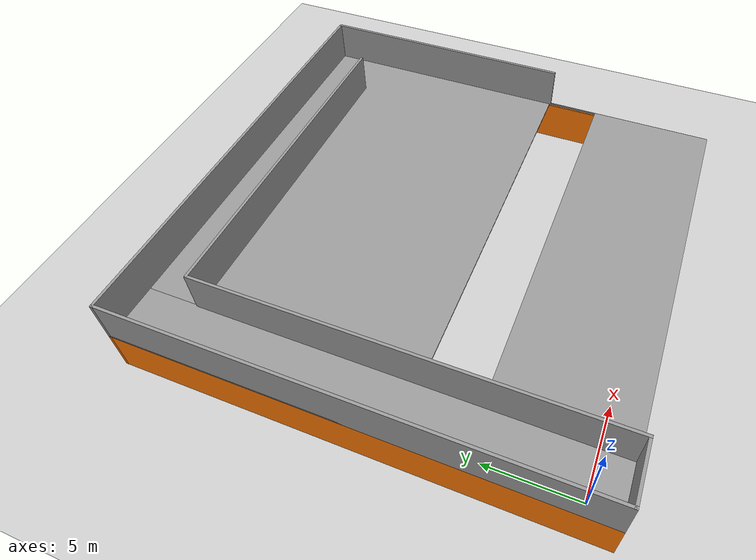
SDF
<sdf version="1.7">
 <world name="default">
  <light name="sun" type="directional">
   <pose>0 0 10 0 -0 0</pose>
   <diffuse>0.8 0.8 0.8 1</diffuse>
   <specular>0.2 0.2 0.2 1</specular>
   <attenuation>
    <range>1000</range>
    <constant>0.9</constant>
    <linear>0.01</linear>
    <quadratic>0.001</quadratic>
   </attenuation>
   <direction>-0.5 0.1 -0.9</direction>
   <spot><inner_angle>0</inner_angle><outer_angle>0</outer_angle><falloff>0</falloff></spot>
  </light>
  <model name="ground_plane">
   <static>1</static>
   <link name="link">
    <collision name="collision">
     <geometry><plane><normal>0 0 1</normal><size>100 100</size></plane></geometry>
     <surface>
      <contact><collide_bitmask>65535</collide_bitmask></contact>
      <friction><ode><mu>100</mu><mu2>50</mu2></ode></friction>
     </surface>
    </collision>
    <visual name="visual">
     <cast_shadows>0</cast_shadows>
     <geometry><plane><normal>0 0 1</normal><size>100 100</size></plane></geometry>
     <material>
      <script><uri>file://media/materials/scripts/gazebo.material</uri><name>Gazebo/Grey</name></script>
     </material>
    </visual>
   </link>
  </model>
  <gravity>0 0 -9.8</gravity>
  <magnetic_field>6e-06 2.3e-05 -4.2e-05</magnetic_field>
  <atmosphere type="adiabatic"/>
  <physics type="ode">
   <max_step_size>0.001</max_step_size>
   <real_time_factor>1</real_time_factor>
   <real_time_update_rate>1000</real_time_update_rate>
  </physics>
  <scene><ambient>0.4 0.4 0.4 1</ambient><background>0.7 0.7 0.7 1</background><shadows>1</shadows></scene>
  <spherical_coordinates>
   <surface_model>EARTH_WGS84</surface_model>
   <latitude_deg>0</latitude_deg>
   <longitude_deg>0</longitude_deg>
   <elevation>0</elevation>
   <heading_deg>0</heading_deg>
  </spherical_coordinates>
  <model name="smart_house_2">
   <link name="Floor_3">
    <pose>0 0 2.5 0 -0 0</pose>
    <visual name="Floor_3_Visual_0">
     <pose>-11.0375 0 0.05 0 -0 0</pose>
     <geometry><box><size>3.075 25.15 0.1</size></box></geometry>
     <material>
      <script><uri>file://media/materials/scripts/gazebo.material</uri><name>Gazebo/Grey</name></script>
      <ambient>1 1 1 1</ambient>
      <shader type="pixel"/>
     </material>
     <meta><layer>1</layer></meta>
    </visual>
    <visual name="Floor_3_Visual_1">
     <pose>1.5375 -9.0375 0.05 0 -0 0</pose>
     <geometry><box><size>22.075 7.075 0.1</size></box></geometry>
     <material>
      <script><uri>file://media/materials/scripts/gazebo.material</uri><name>Gazebo/Grey</name></script>
      <ambient>1 1 1 1</ambient>
      <shader type="pixel"/>
     </material>
     <meta><layer>1</layer></meta>
    </visual>
    <visual name="Floor_3_Visual_2">
     <pose>12.5375 3.5375 0.05 0 -0 0</pose>
     <geometry><box><size>0.075 18.075 0.1</size></box></geometry>
     <material>
      <script><uri>file://media/materials/scripts/gazebo.material</uri><name>Gazebo/Grey</name></script>
      <ambient>1 1 1 1</ambient>
      <shader type="pixel"/>
     </material>
     <meta><layer>1</layer></meta>
    </visual>
    <visual name="Floor_3_Visual_3">
     <pose>1.5 5.0375 0.05 0 -0 0</pose>
     <geometry><box><size>22 15.075 0.1</size></box></geometry>
     <material>
      <script><uri>file://media/materials/scripts/gazebo.material</uri><name>Gazebo/Grey</name></script>
      <ambient>1 1 1 1</ambient>
      <shader type="pixel"/>
     </material>
     <meta><layer>1</layer></meta>
    </visual>
    <collision name="Floor_3_Collision_0">
     <pose>-11.0375 0 0.05 0 -0 0</pose>
     <geometry><box><size>3.075 25.15 0.1</size></box></geometry>
     <surface>
      <friction>
       <ode><mu>1</mu><mu2>1</mu2><fdir1>0 0 0</fdir1><slip1>0</slip1><slip2>0</slip2></ode>
       <torsional>
        <coefficient>1</coefficient>
        <patch_radius>0</patch_radius>
        <surface_radius>0</surface_radius>
        <use_patch_radius>1</use_patch_radius>
        <ode><slip>0</slip></ode>
       </torsional>
      </friction>
      <bounce><restitution_coefficient>0</restitution_coefficient><threshold>1e+06</threshold></bounce>
      <contact>
       <collide_without_contact>0</collide_without_contact>
       <collide_without_contact_bitmask>1</collide_without_contact_bitmask>
       <collide_bitmask>1</collide_bitmask>
       <ode>
        <soft_cfm>0</soft_cfm>
        <soft_erp>0.2</soft_erp>
        <kp>1e+13</kp>
        <kd>1</kd>
        <max_vel>0.01</max_vel>
        <min_depth>0</min_depth>
       </ode>
       <bullet>
        <split_impulse>1</split_impulse>
        <split_impulse_penetration_threshold>-0.01</split_impulse_penetration_threshold>
        <soft_cfm>0</soft_cfm>
        <soft_erp>0.2</soft_erp>
        <kp>1e+13</kp>
        <kd>1</kd>
       </bullet>
      </contact>
     </surface>
    </collision>
    <collision name="Floor_3_Collision_1">
     <pose>1.5375 -9.0375 0.05 0 -0 0</pose>
     <geometry><box><size>22.075 7.075 0.1</size></box></geometry>
     <surface>
      <friction>
       <ode><mu>1</mu><mu2>1</mu2><fdir1>0 0 0</fdir1><slip1>0</slip1><slip2>0</slip2></ode>
       <torsional>
        <coefficient>1</coefficient>
        <patch_radius>0</patch_radius>
        <surface_radius>0</surface_radius>
        <use_patch_radius>1</use_patch_radius>
        <ode><slip>0</slip></ode>
       </torsional>
      </friction>
      <bounce><restitution_coefficient>0</restitution_coefficient><threshold>1e+06</threshold></bounce>
      <contact>
       <collide_without_contact>0</collide_without_contact>
       <collide_without_contact_bitmask>1</collide_without_contact_bitmask>
       <collide_bitmask>1</collide_bitmask>
       <ode>
        <soft_cfm>0</soft_cfm>
        <soft_erp>0.2</soft_erp>
        <kp>1e+13</kp>
        <kd>1</kd>
        <max_vel>0.01</max_vel>
        <min_depth>0</min_depth>
       </ode>
       <bullet>
        <split_impulse>1</split_impulse>
        <split_impulse_penetration_threshold>-0.01</split_impulse_penetration_threshold>
        <soft_cfm>0</soft_cfm>
        <soft_erp>0.2</soft_erp>
        <kp>1e+13</kp>
        <kd>1</kd>
       </bullet>
      </contact>
     </surface>
    </collision>
    <collision name="Floor_3_Collision_2">
     <pose>12.5375 3.5375 0.05 0 -0 0</pose>
     <geometry><box><size>0.075 18.075 0.1</size></box></geometry>
     <surface>
      <friction>
       <ode><mu>1</mu><mu2>1</mu2><fdir1>0 0 0</fdir1><slip1>0</slip1><slip2>0</slip2></ode>
       <torsional>
        <coefficient>1</coefficient>
        <patch_radius>0</patch_radius>
        <surface_radius>0</surface_radius>
        <use_patch_radius>1</use_patch_radius>
        <ode><slip>0</slip></ode>
       </torsional>
      </friction>
      <bounce><restitution_coefficient>0</restitution_coefficient><threshold>1e+06</threshold></bounce>
      <contact>
       <collide_without_contact>0</collide_without_contact>
       <collide_without_contact_bitmask>1</collide_without_contact_bitmask>
       <collide_bitmask>1</collide_bitmask>
       <ode>
        <soft_cfm>0</soft_cfm>
        <soft_erp>0.2</soft_erp>
        <kp>1e+13</kp>
        <kd>1</kd>
        <max_vel>0.01</max_vel>
        <min_depth>0</min_depth>
       </ode>
       <bullet>
        <split_impulse>1</split_impulse>
        <split_impulse_penetration_threshold>-0.01</split_impulse_penetration_threshold>
        <soft_cfm>0</soft_cfm>
        <soft_erp>0.2</soft_erp>
        <kp>1e+13</kp>
        <kd>1</kd>
       </bullet>
      </contact>
     </surface>
    </collision>
    <collision name="Floor_3_Collision_3">
     <pose>1.5 5.0375 0.05 0 -0 0</pose>
     <geometry><box><size>22 15.075 0.1</size></box></geometry>
     <surface>
      <friction>
       <ode><mu>1</mu><mu2>1</mu2><fdir1>0 0 0</fdir1><slip1>0</slip1><slip2>0</slip2></ode>
       <torsional>
        <coefficient>1</coefficient>
        <patch_radius>0</patch_radius>
        <surface_radius>0</surface_radius>
        <use_patch_radius>1</use_patch_radius>
        <ode><slip>0</slip></ode>
       </torsional>
      </friction>
      <bounce><restitution_coefficient>0</restitution_coefficient><threshold>1e+06</threshold></bounce>
      <contact>
       <collide_without_contact>0</collide_without_contact>
       <collide_without_contact_bitmask>1</collide_without_contact_bitmask>
       <collide_bitmask>1</collide_bitmask>
       <ode>
        <soft_cfm>0</soft_cfm>
        <soft_erp>0.2</soft_erp>
        <kp>1e+13</kp>
        <kd>1</kd>
        <max_vel>0.01</max_vel>
        <min_depth>0</min_depth>
       </ode>
       <bullet>
        <split_impulse>1</split_impulse>
        <split_impulse_penetration_threshold>-0.01</split_impulse_penetration_threshold>
        <soft_cfm>0</soft_cfm>
        <soft_erp>0.2</soft_erp>
        <kp>1e+13</kp>
        <kd>1</kd>
       </bullet>
      </contact>
     </surface>
    </collision>
   </link>
   <link name="Wall_0">
    <pose>0 -12.5 0 0 -0 0</pose>
    <visual name="Wall_0_Visual">
     <pose>0 0 1.25 0 -0 0</pose>
     <geometry><box><size>25.15 0.15 2.5</size></box></geometry>
     <material>
      <script><uri>file://media/materials/scripts/gazebo.material</uri><name>Gazebo/Grey</name></script>
      <ambient>0.996078 0.47451 0.0196078 1</ambient>
      <shader type="pixel"/>
     </material>
     <meta><layer>0</layer></meta>
    </visual>
    <collision name="Wall_0_Collision">
     <pose>0 0 1.25 0 -0 0</pose>
     <geometry><box><size>25.15 0.15 2.5</size></box></geometry>
     <surface>
      <friction>
       <ode><mu>1</mu><mu2>1</mu2><fdir1>0 0 0</fdir1><slip1>0</slip1><slip2>0</slip2></ode>
       <torsional>
        <coefficient>1</coefficient>
        <patch_radius>0</patch_radius>
        <surface_radius>0</surface_radius>
        <use_patch_radius>1</use_patch_radius>
        <ode><slip>0</slip></ode>
       </torsional>
      </friction>
      <bounce><restitution_coefficient>0</restitution_coefficient><threshold>1e+06</threshold></bounce>
      <contact>
       <collide_without_contact>0</collide_without_contact>
       <collide_without_contact_bitmask>1</collide_without_contact_bitmask>
       <collide_bitmask>1</collide_bitmask>
       <ode>
        <soft_cfm>0</soft_cfm>
        <soft_erp>0.2</soft_erp>
        <kp>1e+13</kp>
        <kd>1</kd>
        <max_vel>0.01</max_vel>
        <min_depth>0</min_depth>
       </ode>
       <bullet>
        <split_impulse>1</split_impulse>
        <split_impulse_penetration_threshold>-0.01</split_impulse_penetration_threshold>
        <soft_cfm>0</soft_cfm>
        <soft_erp>0.2</soft_erp>
        <kp>1e+13</kp>
        <kd>1</kd>
       </bullet>
      </contact>
     </surface>
    </collision>
   </link>
   <link name="Wall_1">
    <pose>12.5 0 0 0 -0 1.5708</pose>
    <visual name="Wall_1_Visual">
     <pose>0 0 1.25 0 -0 0</pose>
     <geometry><box><size>25.15 0.15 2.5</size></box></geometry>
     <material>
      <script><uri>file://media/materials/scripts/gazebo.material</uri><name>Gazebo/Grey</name></script>
      <ambient>0.996078 0.47451 0.0196078 1</ambient>
      <shader type="pixel"/>
     </material>
     <meta><layer>0</layer></meta>
    </visual>
    <collision name="Wall_1_Collision">
     <pose>0 0 1.25 0 -0 0</pose>
     <geometry><box><size>25.15 0.15 2.5</size></box></geometry>
     <surface>
      <friction>
       <ode><mu>1</mu><mu2>1</mu2><fdir1>0 0 0</fdir1><slip1>0</slip1><slip2>0</slip2></ode>
       <torsional>
        <coefficient>1</coefficient>
        <patch_radius>0</patch_radius>
        <surface_radius>0</surface_radius>
        <use_patch_radius>1</use_patch_radius>
        <ode><slip>0</slip></ode>
       </torsional>
      </friction>
      <bounce><restitution_coefficient>0</restitution_coefficient><threshold>1e+06</threshold></bounce>
      <contact>
       <collide_without_contact>0</collide_without_contact>
       <collide_without_contact_bitmask>1</collide_without_contact_bitmask>
       <collide_bitmask>1</collide_bitmask>
       <ode>
        <soft_cfm>0</soft_cfm>
        <soft_erp>0.2</soft_erp>
        <kp>1e+13</kp>
        <kd>1</kd>
        <max_vel>0.01</max_vel>
        <min_depth>0</min_depth>
       </ode>
       <bullet>
        <split_impulse>1</split_impulse>
        <split_impulse_penetration_threshold>-0.01</split_impulse_penetration_threshold>
        <soft_cfm>0</soft_cfm>
        <soft_erp>0.2</soft_erp>
        <kp>1e+13</kp>
        <kd>1</kd>
       </bullet>
      </contact>
     </surface>
    </collision>
   </link>
   <link name="Wall_13">
    <pose>-9.5 -1.5 0 0 -0 1.5708</pose>
    <visual name="Wall_13_Visual">
     <pose>0 0 1.25 0 -0 0</pose>
     <geometry><box><size>22.15 0.15 2.5</size></box></geometry>
     <material>
      <script><uri>file://media/materials/scripts/gazebo.material</uri><name>Gazebo/Grey</name></script>
      <ambient>0.435294 0.796078 0.67451 1</ambient>
      <shader type="pixel"/>
     </material>
     <meta><layer>0</layer></meta>
    </visual>
    <collision name="Wall_13_Collision">
     <pose>0 0 1.25 0 -0 0</pose>
     <geometry><box><size>22.15 0.15 2.5</size></box></geometry>
     <surface>
      <friction>
       <ode><mu>1</mu><mu2>1</mu2><fdir1>0 0 0</fdir1><slip1>0</slip1><slip2>0</slip2></ode>
       <torsional>
        <coefficient>1</coefficient>
        <patch_radius>0</patch_radius>
        <surface_radius>0</surface_radius>
        <use_patch_radius>1</use_patch_radius>
        <ode><slip>0</slip></ode>
       </torsional>
      </friction>
      <bounce><restitution_coefficient>0</restitution_coefficient><threshold>1e+06</threshold></bounce>
      <contact>
       <collide_without_contact>0</collide_without_contact>
       <collide_without_contact_bitmask>1</collide_without_contact_bitmask>
       <collide_bitmask>1</collide_bitmask>
       <ode>
        <soft_cfm>0</soft_cfm>
        <soft_erp>0.2</soft_erp>
        <kp>1e+13</kp>
        <kd>1</kd>
        <max_vel>0.01</max_vel>
        <min_depth>0</min_depth>
       </ode>
       <bullet>
        <split_impulse>1</split_impulse>
        <split_impulse_penetration_threshold>-0.01</split_impulse_penetration_threshold>
        <soft_cfm>0</soft_cfm>
        <soft_erp>0.2</soft_erp>
        <kp>1e+13</kp>
        <kd>1</kd>
       </bullet>
      </contact>
     </surface>
    </collision>
   </link>
   <link name="Wall_14">
    <pose>0 9.5 0 0 -0 0</pose>
    <visual name="Wall_14_Visual">
     <pose>0 0 1.25 0 -0 0</pose>
     <geometry><box><size>19.15 0.15 2.5</size></box></geometry>
     <material>
      <script><uri>file://media/materials/scripts/gazebo.material</uri><name>Gazebo/Grey</name></script>
      <ambient>0.435294 0.796078 0.67451 1</ambient>
      <shader type="pixel"/>
     </material>
     <meta><layer>0</layer></meta>
    </visual>
    <collision name="Wall_14_Collision">
     <pose>0 0 1.25 0 -0 0</pose>
     <geometry><box><size>19.15 0.15 2.5</size></box></geometry>
     <surface>
      <friction>
       <ode><mu>1</mu><mu2>1</mu2><fdir1>0 0 0</fdir1><slip1>0</slip1><slip2>0</slip2></ode>
       <torsional>
        <coefficient>1</coefficient>
        <patch_radius>0</patch_radius>
        <surface_radius>0</surface_radius>
        <use_patch_radius>1</use_patch_radius>
        <ode><slip>0</slip></ode>
       </torsional>
      </friction>
      <bounce><restitution_coefficient>0</restitution_coefficient><threshold>1e+06</threshold></bounce>
      <contact>
       <collide_without_contact>0</collide_without_contact>
       <collide_without_contact_bitmask>1</collide_without_contact_bitmask>
       <collide_bitmask>1</collide_bitmask>
       <ode>
        <soft_cfm>0</soft_cfm>
        <soft_erp>0.2</soft_erp>
        <kp>1e+13</kp>
        <kd>1</kd>
        <max_vel>0.01</max_vel>
        <min_depth>0</min_depth>
       </ode>
       <bullet>
        <split_impulse>1</split_impulse>
        <split_impulse_penetration_threshold>-0.01</split_impulse_penetration_threshold>
        <soft_cfm>0</soft_cfm>
        <soft_erp>0.2</soft_erp>
        <kp>1e+13</kp>
        <kd>1</kd>
       </bullet>
      </contact>
     </surface>
    </collision>
   </link>
   <link name="Wall_2">
    <pose>0 12.5 0 0 -0 3.14159</pose>
    <visual name="Wall_2_Visual">
     <pose>0 0 1.25 0 -0 0</pose>
     <geometry><box><size>25.15 0.15 2.5</size></box></geometry>
     <material>
      <script><uri>file://media/materials/scripts/gazebo.material</uri><name>Gazebo/Grey</name></script>
      <ambient>0.996078 0.47451 0.0196078 1</ambient>
      <shader type="pixel"/>
     </material>
     <meta><layer>0</layer></meta>
    </visual>
    <collision name="Wall_2_Collision">
     <pose>0 0 1.25 0 -0 0</pose>
     <geometry><box><size>25.15 0.15 2.5</size></box></geometry>
     <surface>
      <friction>
       <ode><mu>1</mu><mu2>1</mu2><fdir1>0 0 0</fdir1><slip1>0</slip1><slip2>0</slip2></ode>
       <torsional>
        <coefficient>1</coefficient>
        <patch_radius>0</patch_radius>
        <surface_radius>0</surface_radius>
        <use_patch_radius>1</use_patch_radius>
        <ode><slip>0</slip></ode>
       </torsional>
      </friction>
      <bounce><restitution_coefficient>0</restitution_coefficient><threshold>1e+06</threshold></bounce>
      <contact>
       <collide_without_contact>0</collide_without_contact>
       <collide_without_contact_bitmask>1</collide_without_contact_bitmask>
       <collide_bitmask>1</collide_bitmask>
       <ode>
        <soft_cfm>0</soft_cfm>
        <soft_erp>0.2</soft_erp>
        <kp>1e+13</kp>
        <kd>1</kd>
        <max_vel>0.01</max_vel>
        <min_depth>0</min_depth>
       </ode>
       <bullet>
        <split_impulse>1</split_impulse>
        <split_impulse_penetration_threshold>-0.01</split_impulse_penetration_threshold>
        <soft_cfm>0</soft_cfm>
        <soft_erp>0.2</soft_erp>
        <kp>1e+13</kp>
        <kd>1</kd>
       </bullet>
      </contact>
     </surface>
    </collision>
   </link>
   <link name="Wall_24">
    <pose>0 12.5 2.5 0 -0 3.14159</pose>
    <visual name="Wall_24_Visual">
     <pose>0 0 1.25 0 -0 0</pose>
     <geometry><box><size>25.15 0.15 2.5</size></box></geometry>
     <material>
      <script><uri>file://media/materials/scripts/gazebo.material</uri><name>Gazebo/Grey</name></script>
      <ambient>1 1 1 1</ambient>
      <shader type="pixel"/>
     </material>
     <meta><layer>1</layer></meta>
    </visual>
    <collision name="Wall_24_Collision">
     <pose>0 0 1.25 0 -0 0</pose>
     <geometry><box><size>25.15 0.15 2.5</size></box></geometry>
     <surface>
      <friction>
       <ode><mu>1</mu><mu2>1</mu2><fdir1>0 0 0</fdir1><slip1>0</slip1><slip2>0</slip2></ode>
       <torsional>
        <coefficient>1</coefficient>
        <patch_radius>0</patch_radius>
        <surface_radius>0</surface_radius>
        <use_patch_radius>1</use_patch_radius>
        <ode><slip>0</slip></ode>
       </torsional>
      </friction>
      <bounce><restitution_coefficient>0</restitution_coefficient><threshold>1e+06</threshold></bounce>
      <contact>
       <collide_without_contact>0</collide_without_contact>
       <collide_without_contact_bitmask>1</collide_without_contact_bitmask>
       <collide_bitmask>1</collide_bitmask>
       <ode>
        <soft_cfm>0</soft_cfm>
        <soft_erp>0.2</soft_erp>
        <kp>1e+13</kp>
        <kd>1</kd>
        <max_vel>0.01</max_vel>
        <min_depth>0</min_depth>
       </ode>
       <bullet>
        <split_impulse>1</split_impulse>
        <split_impulse_penetration_threshold>-0.01</split_impulse_penetration_threshold>
        <soft_cfm>0</soft_cfm>
        <soft_erp>0.2</soft_erp>
        <kp>1e+13</kp>
        <kd>1</kd>
       </bullet>
      </contact>
     </surface>
    </collision>
   </link>
   <link name="Wall_25">
    <pose>-12.5 0 2.5 0 0 -1.5708</pose>
    <visual name="Wall_25_Visual">
     <pose>0 0 1.25 0 -0 0</pose>
     <geometry><box><size>25.15 0.15 2.5</size></box></geometry>
     <material>
      <script><uri>file://media/materials/scripts/gazebo.material</uri><name>Gazebo/Grey</name></script>
      <ambient>1 1 1 1</ambient>
      <shader type="pixel"/>
     </material>
     <meta><layer>1</layer></meta>
    </visual>
    <collision name="Wall_25_Collision">
     <pose>0 0 1.25 0 -0 0</pose>
     <geometry><box><size>25.15 0.15 2.5</size></box></geometry>
     <surface>
      <friction>
       <ode><mu>1</mu><mu2>1</mu2><fdir1>0 0 0</fdir1><slip1>0</slip1><slip2>0</slip2></ode>
       <torsional>
        <coefficient>1</coefficient>
        <patch_radius>0</patch_radius>
        <surface_radius>0</surface_radius>
        <use_patch_radius>1</use_patch_radius>
        <ode><slip>0</slip></ode>
       </torsional>
      </friction>
      <bounce><restitution_coefficient>0</restitution_coefficient><threshold>1e+06</threshold></bounce>
      <contact>
       <collide_without_contact>0</collide_without_contact>
       <collide_without_contact_bitmask>1</collide_without_contact_bitmask>
       <collide_bitmask>1</collide_bitmask>
       <ode>
        <soft_cfm>0</soft_cfm>
        <soft_erp>0.2</soft_erp>
        <kp>1e+13</kp>
        <kd>1</kd>
        <max_vel>0.01</max_vel>
        <min_depth>0</min_depth>
       </ode>
       <bullet>
        <split_impulse>1</split_impulse>
        <split_impulse_penetration_threshold>-0.01</split_impulse_penetration_threshold>
        <soft_cfm>0</soft_cfm>
        <soft_erp>0.2</soft_erp>
        <kp>1e+13</kp>
        <kd>1</kd>
       </bullet>
      </contact>
     </surface>
    </collision>
   </link>
   <link name="Wall_26">
    <pose>-9.5 -1.5 2.5 0 -0 1.5708</pose>
    <visual name="Wall_26_Visual">
     <pose>0 0 1.25 0 -0 0</pose>
     <geometry><box><size>22.15 0.15 2.5</size></box></geometry>
     <material>
      <script><uri>file://media/materials/scripts/gazebo.material</uri><name>Gazebo/Grey</name></script>
      <ambient>1 1 1 1</ambient>
      <shader type="pixel"/>
     </material>
     <meta><layer>1</layer></meta>
    </visual>
    <collision name="Wall_26_Collision">
     <pose>0 0 1.25 0 -0 0</pose>
     <geometry><box><size>22.15 0.15 2.5</size></box></geometry>
     <surface>
      <friction>
       <ode><mu>1</mu><mu2>1</mu2><fdir1>0 0 0</fdir1><slip1>0</slip1><slip2>0</slip2></ode>
       <torsional>
        <coefficient>1</coefficient>
        <patch_radius>0</patch_radius>
        <surface_radius>0</surface_radius>
        <use_patch_radius>1</use_patch_radius>
        <ode><slip>0</slip></ode>
       </torsional>
      </friction>
      <bounce><restitution_coefficient>0</restitution_coefficient><threshold>1e+06</threshold></bounce>
      <contact>
       <collide_without_contact>0</collide_without_contact>
       <collide_without_contact_bitmask>1</collide_without_contact_bitmask>
       <collide_bitmask>1</collide_bitmask>
       <ode>
        <soft_cfm>0</soft_cfm>
        <soft_erp>0.2</soft_erp>
        <kp>1e+13</kp>
        <kd>1</kd>
        <max_vel>0.01</max_vel>
        <min_depth>0</min_depth>
       </ode>
       <bullet>
        <split_impulse>1</split_impulse>
        <split_impulse_penetration_threshold>-0.01</split_impulse_penetration_threshold>
        <soft_cfm>0</soft_cfm>
        <soft_erp>0.2</soft_erp>
        <kp>1e+13</kp>
        <kd>1</kd>
       </bullet>
      </contact>
     </surface>
    </collision>
   </link>
   <link name="Wall_27">
    <pose>0 9.5 2.5 0 -0 0</pose>
    <visual name="Wall_27_Visual">
     <pose>0 0 1.25 0 -0 0</pose>
     <geometry><box><size>19.15 0.15 2.5</size></box></geometry>
     <material>
      <script><uri>file://media/materials/scripts/gazebo.material</uri><name>Gazebo/Grey</name></script>
      <ambient>1 1 1 1</ambient>
      <shader type="pixel"/>
     </material>
     <meta><layer>1</layer></meta>
    </visual>
    <collision name="Wall_27_Collision">
     <pose>0 0 1.25 0 -0 0</pose>
     <geometry><box><size>19.15 0.15 2.5</size></box></geometry>
     <surface>
      <friction>
       <ode><mu>1</mu><mu2>1</mu2><fdir1>0 0 0</fdir1><slip1>0</slip1><slip2>0</slip2></ode>
       <torsional>
        <coefficient>1</coefficient>
        <patch_radius>0</patch_radius>
        <surface_radius>0</surface_radius>
        <use_patch_radius>1</use_patch_radius>
        <ode><slip>0</slip></ode>
       </torsional>
      </friction>
      <bounce><restitution_coefficient>0</restitution_coefficient><threshold>1e+06</threshold></bounce>
      <contact>
       <collide_without_contact>0</collide_without_contact>
       <collide_without_contact_bitmask>1</collide_without_contact_bitmask>
       <collide_bitmask>1</collide_bitmask>
       <ode>
        <soft_cfm>0</soft_cfm>
        <soft_erp>0.2</soft_erp>
        <kp>1e+13</kp>
        <kd>1</kd>
        <max_vel>0.01</max_vel>
        <min_depth>0</min_depth>
       </ode>
       <bullet>
        <split_impulse>1</split_impulse>
        <split_impulse_penetration_threshold>-0.01</split_impulse_penetration_threshold>
        <soft_cfm>0</soft_cfm>
        <soft_erp>0.2</soft_erp>
        <kp>1e+13</kp>
        <kd>1</kd>
       </bullet>
      </contact>
     </surface>
    </collision>
   </link>
   <link name="Wall_28">
    <pose>-11 -12.5 2.5 0 -0 0</pose>
    <visual name="Wall_28_Visual">
     <pose>0 0 1.25 0 -0 0</pose>
     <geometry><box><size>3.15 0.15 2.5</size></box></geometry>
     <material>
      <script><uri>file://media/materials/scripts/gazebo.material</uri><name>Gazebo/Grey</name></script>
      <ambient>1 1 1 1</ambient>
      <shader type="pixel"/>
     </material>
     <meta><layer>1</layer></meta>
    </visual>
    <collision name="Wall_28_Collision">
     <pose>0 0 1.25 0 -0 0</pose>
     <geometry><box><size>3.15 0.15 2.5</size></box></geometry>
     <surface>
      <friction>
       <ode><mu>1</mu><mu2>1</mu2><fdir1>0 0 0</fdir1><slip1>0</slip1><slip2>0</slip2></ode>
       <torsional>
        <coefficient>1</coefficient>
        <patch_radius>0</patch_radius>
        <surface_radius>0</surface_radius>
        <use_patch_radius>1</use_patch_radius>
        <ode><slip>0</slip></ode>
       </torsional>
      </friction>
      <bounce><restitution_coefficient>0</restitution_coefficient><threshold>1e+06</threshold></bounce>
      <contact>
       <collide_without_contact>0</collide_without_contact>
       <collide_without_contact_bitmask>1</collide_without_contact_bitmask>
       <collide_bitmask>1</collide_bitmask>
       <ode>
        <soft_cfm>0</soft_cfm>
        <soft_erp>0.2</soft_erp>
        <kp>1e+13</kp>
        <kd>1</kd>
        <max_vel>0.01</max_vel>
        <min_depth>0</min_depth>
       </ode>
       <bullet>
        <split_impulse>1</split_impulse>
        <split_impulse_penetration_threshold>-0.01</split_impulse_penetration_threshold>
        <soft_cfm>0</soft_cfm>
        <soft_erp>0.2</soft_erp>
        <kp>1e+13</kp>
        <kd>1</kd>
       </bullet>
      </contact>
     </surface>
    </collision>
   </link>
   <link name="Wall_3">
    <pose>-12.5 0 0 0 0 -1.5708</pose>
    <visual name="Wall_3_Visual">
     <pose>0 0 1.25 0 -0 0</pose>
     <geometry><box><size>25.15 0.15 2.5</size></box></geometry>
     <material>
      <script><uri>file://media/materials/scripts/gazebo.material</uri><name>Gazebo/Grey</name></script>
      <ambient>0.996078 0.47451 0.0196078 1</ambient>
      <shader type="pixel"/>
     </material>
     <meta><layer>0</layer></meta>
    </visual>
    <collision name="Wall_3_Collision">
     <pose>0 0 1.25 0 -0 0</pose>
     <geometry><box><size>25.15 0.15 2.5</size></box></geometry>
     <surface>
      <friction>
       <ode><mu>1</mu><mu2>1</mu2><fdir1>0 0 0</fdir1><slip1>0</slip1><slip2>0</slip2></ode>
       <torsional>
        <coefficient>1</coefficient>
        <patch_radius>0</patch_radius>
        <surface_radius>0</surface_radius>
        <use_patch_radius>1</use_patch_radius>
        <ode><slip>0</slip></ode>
       </torsional>
      </friction>
      <bounce><restitution_coefficient>0</restitution_coefficient><threshold>1e+06</threshold></bounce>
      <contact>
       <collide_without_contact>0</collide_without_contact>
       <collide_without_contact_bitmask>1</collide_without_contact_bitmask>
       <collide_bitmask>1</collide_bitmask>
       <ode>
        <soft_cfm>0</soft_cfm>
        <soft_erp>0.2</soft_erp>
        <kp>1e+13</kp>
        <kd>1</kd>
        <max_vel>0.01</max_vel>
        <min_depth>0</min_depth>
       </ode>
       <bullet>
        <split_impulse>1</split_impulse>
        <split_impulse_penetration_threshold>-0.01</split_impulse_penetration_threshold>
        <soft_cfm>0</soft_cfm>
        <soft_erp>0.2</soft_erp>
        <kp>1e+13</kp>
        <kd>1</kd>
       </bullet>
      </contact>
     </surface>
    </collision>
   </link>
   <link name="Wall_30">
    <pose>12.5 5 2.5 0 0 -1.5708</pose>
    <visual name="Wall_30_Visual">
     <pose>0 0 1.25 0 -0 0</pose>
     <geometry><box><size>15.15 0.15 2.5</size></box></geometry>
     <material>
      <script><uri>file://media/materials/scripts/gazebo.material</uri><name>Gazebo/Grey</name></script>
      <ambient>1 1 1 1</ambient>
      <shader type="pixel"/>
     </material>
     <meta><layer>1</layer></meta>
    </visual>
    <collision name="Wall_30_Collision">
     <pose>0 0 1.25 0 -0 0</pose>
     <geometry><box><size>15.15 0.15 2.5</size></box></geometry>
     <surface>
      <friction>
       <ode><mu>1</mu><mu2>1</mu2><fdir1>0 0 0</fdir1><slip1>0</slip1><slip2>0</slip2></ode>
       <torsional>
        <coefficient>1</coefficient>
        <patch_radius>0</patch_radius>
        <surface_radius>0</surface_radius>
        <use_patch_radius>1</use_patch_radius>
        <ode><slip>0</slip></ode>
       </torsional>
      </friction>
      <bounce><restitution_coefficient>0</restitution_coefficient><threshold>1e+06</threshold></bounce>
      <contact>
       <collide_without_contact>0</collide_without_contact>
       <collide_without_contact_bitmask>1</collide_without_contact_bitmask>
       <collide_bitmask>1</collide_bitmask>
       <ode>
        <soft_cfm>0</soft_cfm>
        <soft_erp>0.2</soft_erp>
        <kp>1e+13</kp>
        <kd>1</kd>
        <max_vel>0.01</max_vel>
        <min_depth>0</min_depth>
       </ode>
       <bullet>
        <split_impulse>1</split_impulse>
        <split_impulse_penetration_threshold>-0.01</split_impulse_penetration_threshold>
        <soft_cfm>0</soft_cfm>
        <soft_erp>0.2</soft_erp>
        <kp>1e+13</kp>
        <kd>1</kd>
       </bullet>
      </contact>
     </surface>
    </collision>
   </link>
   <static>1</static>
   <pose>11 11 0 0 -0 0</pose>
  </model>
  <plugin name="object_spawner_gz_plugin" filename="libobject_spawner_gz_plugin.so"/>
 </world>
</sdf>
